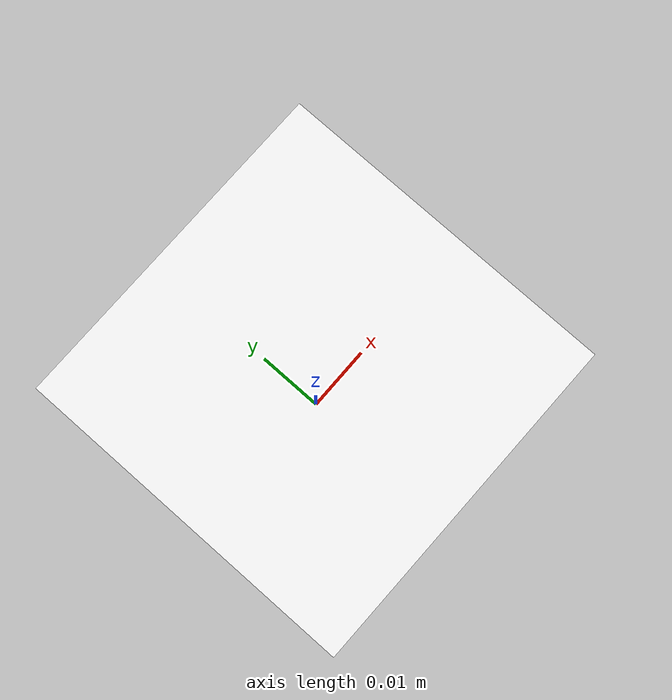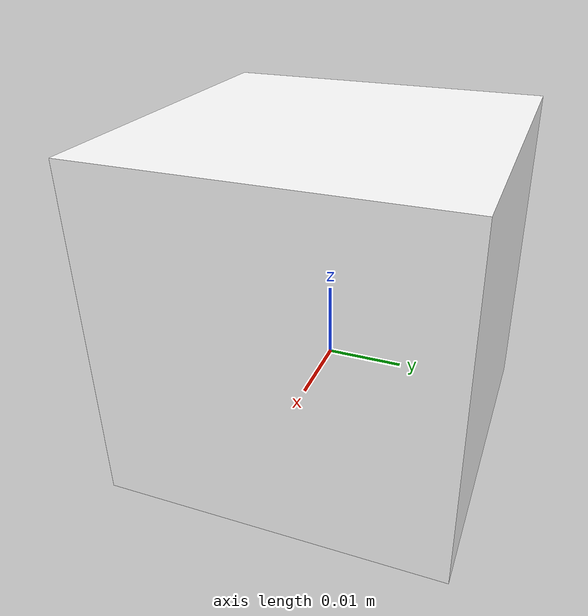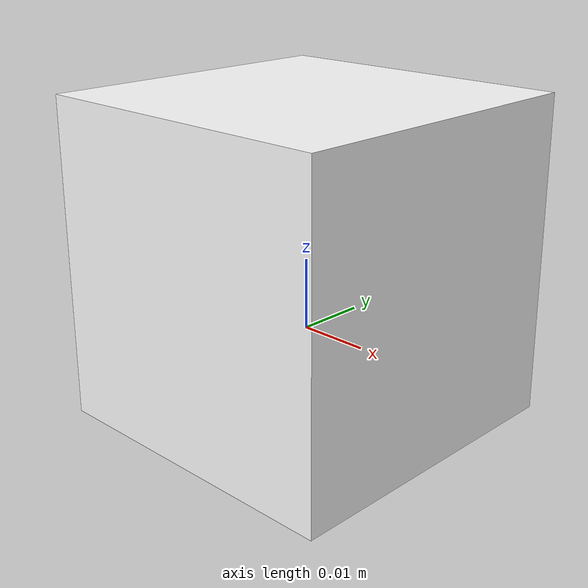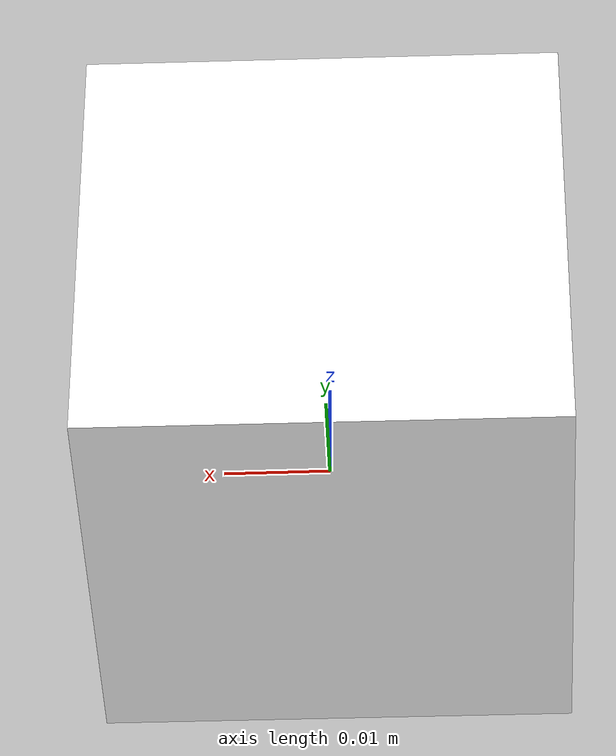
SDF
<?xml version="1.0" ?>
<sdf version="1.5">
  <model name="Marker_ID_1">
    <static>false</static>
    <link name="link">
      <pose>0.0 0.0 0.01 0.0 0.0 0.0</pose>
      <collision name="collision">
        <geometry>
          <!-- Box or plane geometry is used -->
        <box><size>0.045 0.045 0.045</size></box></geometry>
        <surface>
          <friction>
            <ode>
              <mu>1.5</mu>
	      <mu2>1.5</mu2>
            </ode>
          </friction>
          <contact>
            <ode>
	      <min_depth>0.001</min_depth>
	      <max_vel>0.01</max_vel>
	      <kp>100000</kp>
	      <kd>10.0</kd>
            </ode>
          </contact>
        </surface>
      </collision>
      <visual name="visual">
        <geometry>
          <!-- Box or plane geometry is used -->
        <box><size>0.045 0.045 0.045</size></box></geometry>
        <material>
          <ambient>1 1 1 1</ambient>
          <diffuse>1 1 1 1</diffuse>
          <specular>1 1 1 1</specular>
          <pbr>
            <metal>
              <albedo_map>model://marker_0/materials/textures/marker0.png</albedo_map>
            </metal>
          </pbr>
        </material>
      </visual>
      <inertial>
        <mass>0.05</mass>
        <inertia>
          <ixx>2.25e-5</ixx>
          <ixy>0.0</ixy>
          <ixz>0.0</ixz>
          <iyy>2.25e-5</iyy>
          <iyz>0.0</iyz>
          <izz>2.25e-5</izz>
        </inertia>
      </inertial>
    </link>
  </model>
</sdf>
